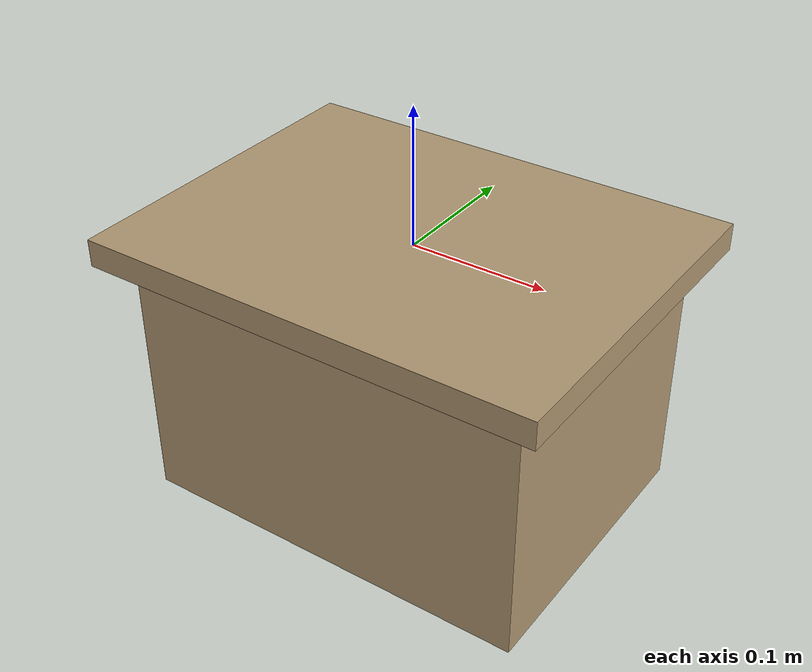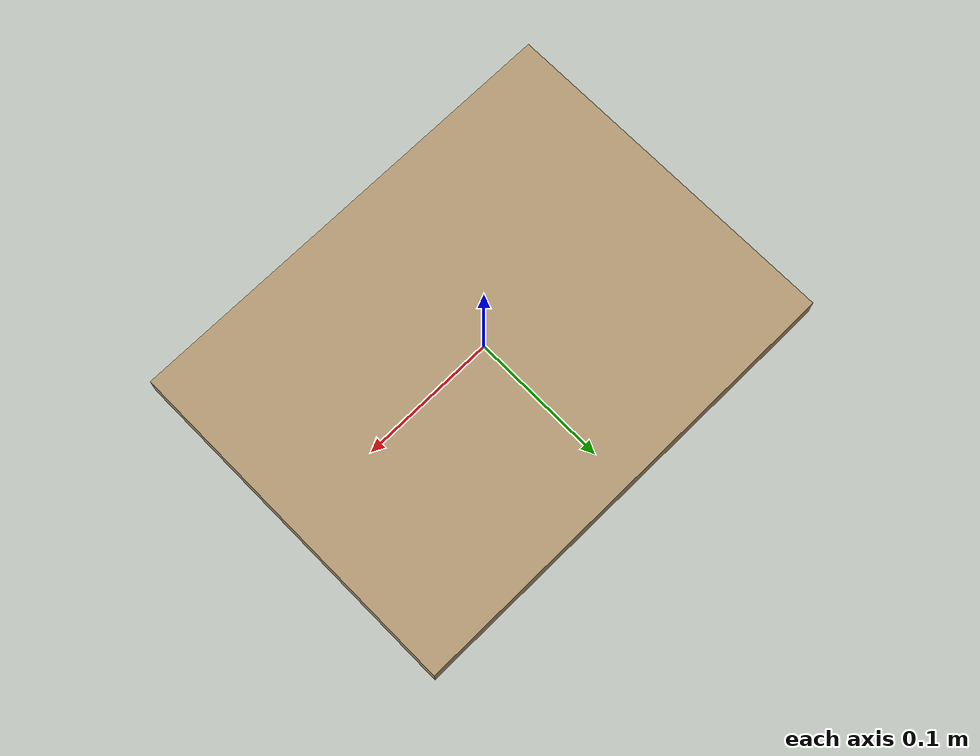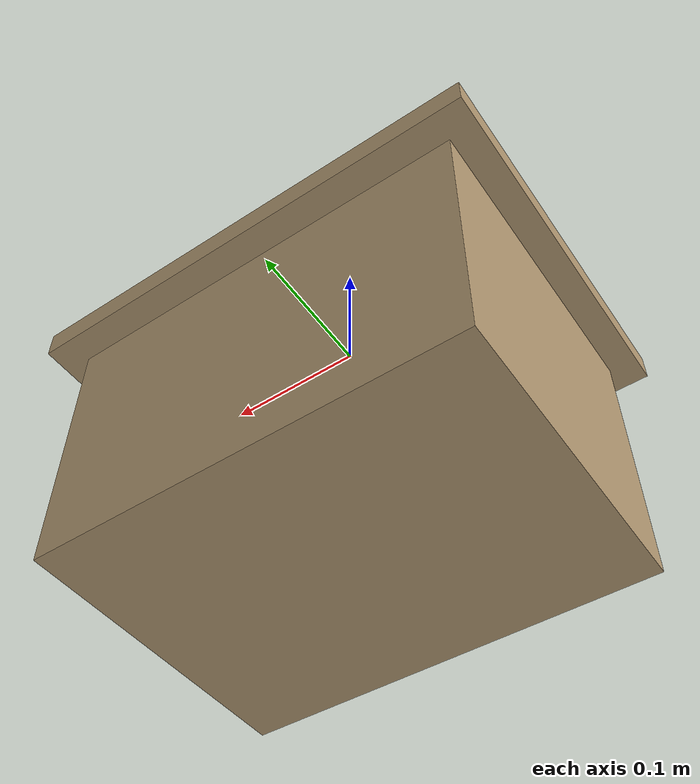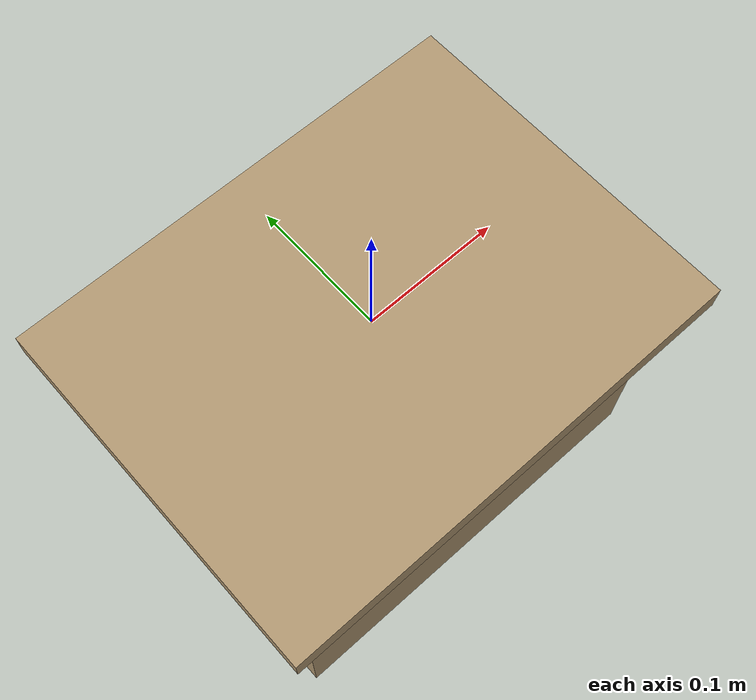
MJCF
<mujoco model="sanding_panel">
    <compiler angle="radian" autolimits="true" />
    <default>
        <default class="visual">
            <geom type="box" contype="0" conaffinity="0" group="2" />
        </default>
        <default class="collision">
            <!-- A workpiece surface, not a rigid fixture: modest friction/priority
                 similar to the table. -->
            <geom type="box" group="3" condim="3"
                friction="0.6 0.01 0.0002" solref="0.012 1.5"
                solimp="0.85 0.95 0.004" margin="0.0005" priority="10" />
        </default>
    </default>

    <asset>
        <material name="panel_wood" rgba="0.70 0.60 0.45 1" reflectance="0" specular="0.05"
            shininess="0" />
    </asset>

    <worldbody>
        <body name="stand">
            <geom class="visual" pos="0 0 -0.10" size="0.15 0.11 0.10"
                material="panel_wood" />
        </body>
        <body name="panel">
            <geom name="panel_visual" class="visual" material="panel_wood"
                size="0.17 0.13 0.01" />
            <geom name="panel_surface" class="collision" size="0.17 0.13 0.01" />
        </body>
    </worldbody>
</mujoco>
